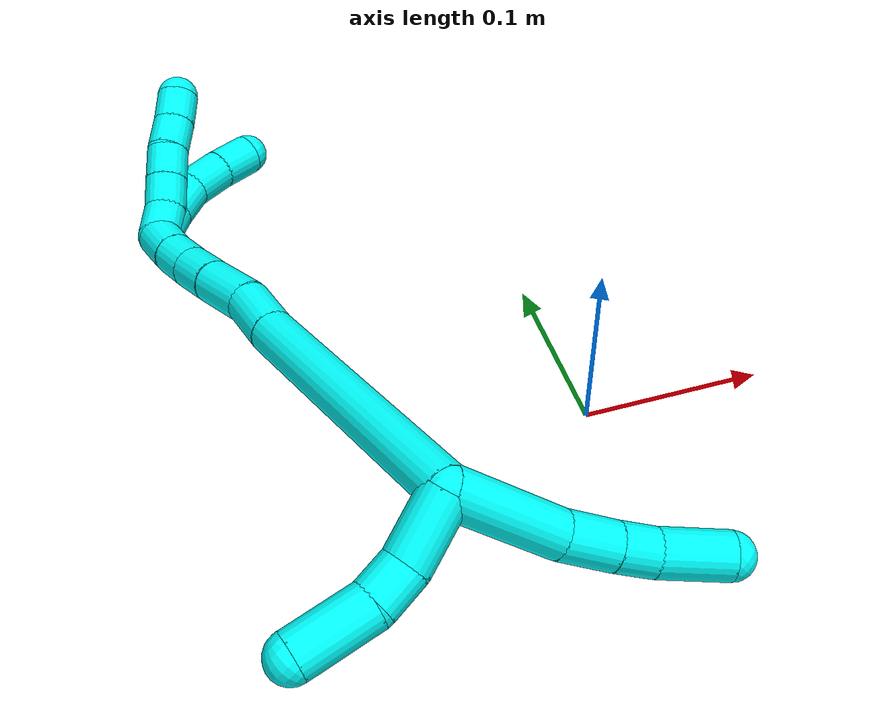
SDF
<sdf version="1.7">
 <world name="default">
  <model name="photoneo_s_sensor">
   <static>1</static>
   <pose>0 0 2 1.57079 1.57079 3.14159</pose>
   <link name="link">
    <inertial><mass>0.1</mass></inertial>
    <sensor name="sensor" type="depth">
     <update_rate>30</update_rate>
     <camera>
      <horizontal_fov>1.22</horizontal_fov>
      <image><width>1920</width><height>1200</height><format>B8G8R8</format></image>
      <clip><near>0.1</near><far>4</far></clip>
      <depth_camera><output>points</output></depth_camera>
     </camera>
     <plugin name="camera_plugin" filename="libgazebo_ros_depth_camera.so">
      <baseline>0.2</baseline>
      <alwaysOn>1</alwaysOn>
      <updateRate>0.0</updateRate>
      <cameraName>camera_ir</cameraName>
      <imageTopicName>/camera/color/image_raw</imageTopicName>
      <cameraInfoTopicName>/camera/color/camera_info</cameraInfoTopicName>
      <depthImageTopicName>/camera/depth/image_raw</depthImageTopicName>
      <depthImageCameraInfoTopicName>/camera/depth/camera_info</depthImageCameraInfoTopicName>
      <pointCloudTopicName>/camera/depth/points</pointCloudTopicName>
      <frameName>fr_optical</frameName>
      <pointCloudCutoff>0.1</pointCloudCutoff>
      <pointCloudCutoffMax>2.0</pointCloudCutoffMax>
      <distortionK1>0</distortionK1>
      <distortionK2>0</distortionK2>
      <distortionK3>0</distortionK3>
      <distortionT1>0</distortionT1>
      <distortionT2>0</distortionT2>
      <CxPrime>0</CxPrime>
      <Cx>0</Cx>
      <Cy>0</Cy>
      <focalLength>0</focalLength>
      <hackBaseline>0</hackBaseline>
     </plugin>
    </sensor>
   </link>
  </model>
  <model name="bin">
   <static>1</static>
   <link name="bottom">
    <collision name="collision-bottom">
     <pose>0 0 -0.01 0 -0 0</pose>
     <geometry><box><size>0.8 0.6 0.02</size></box></geometry>
     <surface>
      <friction><ode><mu>100</mu><mu2>100</mu2></ode></friction>
      <contact><collide_bitmask>65535</collide_bitmask></contact>
     </surface>
    </collision>
   </link>
   <link name="west_wall">
    <collision name="collision-west_wall">
     <pose>-0.41 0 0.1 0 -0 0</pose>
     <geometry><box><size>0.02 0.6 0.2</size></box></geometry>
     <surface>
      <friction><ode><mu>100</mu><mu2>100</mu2></ode></friction>
      <contact><collide_bitmask>65535</collide_bitmask></contact>
     </surface>
    </collision>
   </link>
   <link name="east_wall">
    <collision name="collision-east_wall">
     <pose>0.41 0 0.1 0 -0 0</pose>
     <geometry><box><size>0.02 0.6 0.2</size></box></geometry>
     <surface>
      <friction><ode><mu>100</mu><mu2>100</mu2></ode></friction>
      <contact><collide_bitmask>65535</collide_bitmask></contact>
     </surface>
    </collision>
   </link>
   <link name="south_wall">
    <collision name="collision-south_wall">
     <pose>0 -0.31 0.1 0 -0 0</pose>
     <geometry><box><size>0.8 0.02 0.2</size></box></geometry>
     <surface>
      <friction><ode><mu>100</mu><mu2>100</mu2></ode></friction>
      <contact><collide_bitmask>65535</collide_bitmask></contact>
     </surface>
    </collision>
   </link>
   <link name="north_wall">
    <collision name="collision-north_wall">
     <pose>0 0.31 0.1 0 -0 0</pose>
     <geometry><box><size>0.8 0.02 0.2</size></box></geometry>
     <surface>
      <friction><ode><mu>100</mu><mu2>100</mu2></ode></friction>
      <contact><collide_bitmask>65535</collide_bitmask></contact>
     </surface>
    </collision>
   </link>
  </model>
  <model name="3">
   <static>0</static>
   <link name="3">
    <collision name="collision-cylinder-e_1_2_8">
     <pose>0.011926 0.00792 -0.028072 -2.86661 0.388137 -1.91478</pose>
     <geometry><cylinder><radius>0.0125</radius><length>0.063023</length></cylinder></geometry>
     <surface>
      <friction><ode><mu>1.16</mu><mu2>1.16</mu2><slip1>0</slip1><slip2>0</slip2></ode></friction>
      <contact><ode><kp>1e+06</kp><kd>1</kd><max_vel>0</max_vel><min_depth>0.001</min_depth></ode></contact>
     </surface>
    </collision>
    <visual name="visual-cylinder-e_1_2_8">
     <pose>0.011926 0.00792 -0.028072 -2.86661 0.388137 -1.91478</pose>
     <geometry><cylinder><radius>0.0125</radius><length>0.063023</length></cylinder></geometry>
     <material><ambient>0.003922 1 0.996078 1</ambient></material>
    </visual>
    <collision name="collision-cylinder-e_2_8_9">
     <pose>0.031077 0.016885 -0.0684 -3.05653 0.531033 -2.83111</pose>
     <geometry><cylinder><radius>0.0125</radius><length>0.028533</length></cylinder></geometry>
     <surface>
      <friction><ode><mu>1.16</mu><mu2>1.16</mu2><slip1>0</slip1><slip2>0</slip2></ode></friction>
      <contact><ode><kp>1e+06</kp><kd>1</kd><max_vel>0</max_vel><min_depth>0.001</min_depth></ode></contact>
     </surface>
    </collision>
    <visual name="visual-cylinder-e_2_8_9">
     <pose>0.031077 0.016885 -0.0684 -3.05653 0.531033 -2.83111</pose>
     <geometry><cylinder><radius>0.0125</radius><length>0.028533</length></cylinder></geometry>
     <material><ambient>0.003922 1 0.996078 1</ambient></material>
    </visual>
    <collision name="collision-cylinder-e_3_9_10">
     <pose>0.043987 0.01862 -0.08929 -3.06184 0.580967 -2.87624</pose>
     <geometry><cylinder><radius>0.0125</radius><length>0.020718</length></cylinder></geometry>
     <surface>
      <friction><ode><mu>1.16</mu><mu2>1.16</mu2><slip1>0</slip1><slip2>0</slip2></ode></friction>
      <contact><ode><kp>1e+06</kp><kd>1</kd><max_vel>0</max_vel><min_depth>0.001</min_depth></ode></contact>
     </surface>
    </collision>
    <visual name="visual-cylinder-e_3_9_10">
     <pose>0.043987 0.01862 -0.08929 -3.06184 0.580967 -2.87624</pose>
     <geometry><cylinder><radius>0.0125</radius><length>0.020718</length></cylinder></geometry>
     <material><ambient>0.003922 1 0.996078 1</ambient></material>
    </visual>
    <collision name="collision-cylinder-e_4_10_6">
     <pose>0.061637 0.017701 -0.112415 3.03103 0.687106 2.83465</pose>
     <geometry><cylinder><radius>0.0125</radius><length>0.037726</length></cylinder></geometry>
     <surface>
      <friction><ode><mu>1.16</mu><mu2>1.16</mu2><slip1>0</slip1><slip2>0</slip2></ode></friction>
      <contact><ode><kp>1e+06</kp><kd>1</kd><max_vel>0</max_vel><min_depth>0.001</min_depth></ode></contact>
     </surface>
    </collision>
    <visual name="visual-cylinder-e_4_10_6">
     <pose>0.061637 0.017701 -0.112415 3.03103 0.687106 2.83465</pose>
     <geometry><cylinder><radius>0.0125</radius><length>0.037726</length></cylinder></geometry>
     <material><ambient>0.003922 1 0.996078 1</ambient></material>
    </visual>
    <collision name="collision-cylinder-e_1_2_11">
     <pose>-0.017845 0.002899 -0.00473 -2.59181 -1.2694 2.41002</pose>
     <geometry><cylinder><radius>0.0125</radius><length>0.037374</length></cylinder></geometry>
     <surface>
      <friction><ode><mu>1.16</mu><mu2>1.16</mu2><slip1>0</slip1><slip2>0</slip2></ode></friction>
      <contact><ode><kp>1e+06</kp><kd>1</kd><max_vel>0</max_vel><min_depth>0.001</min_depth></ode></contact>
     </surface>
    </collision>
    <visual name="visual-cylinder-e_1_2_11">
     <pose>-0.017845 0.002899 -0.00473 -2.59181 -1.2694 2.41002</pose>
     <geometry><cylinder><radius>0.0125</radius><length>0.037374</length></cylinder></geometry>
     <material><ambient>0.003922 1 0.996078 1</ambient></material>
    </visual>
    <collision name="collision-cylinder-e_2_11_12">
     <pose>-0.046685 0.005136 -0.009289 1.31771 -1.50873 -1.25808</pose>
     <geometry><cylinder><radius>0.0125</radius><length>0.022033</length></cylinder></geometry>
     <surface>
      <friction><ode><mu>1.16</mu><mu2>1.16</mu2><slip1>0</slip1><slip2>0</slip2></ode></friction>
      <contact><ode><kp>1e+06</kp><kd>1</kd><max_vel>0</max_vel><min_depth>0.001</min_depth></ode></contact>
     </surface>
    </collision>
    <visual name="visual-cylinder-e_2_11_12">
     <pose>-0.046685 0.005136 -0.009289 1.31771 -1.50873 -1.25808</pose>
     <geometry><cylinder><radius>0.0125</radius><length>0.022033</length></cylinder></geometry>
     <material><ambient>0.003922 1 0.996078 1</ambient></material>
    </visual>
    <collision name="collision-cylinder-e_3_12_5">
     <pose>-0.077157 0.004464 -0.00341 0.001716 -1.28574 -0.001286</pose>
     <geometry><cylinder><radius>0.0125</radius><length>0.040593</length></cylinder></geometry>
     <surface>
      <friction><ode><mu>1.16</mu><mu2>1.16</mu2><slip1>0</slip1><slip2>0</slip2></ode></friction>
      <contact><ode><kp>1e+06</kp><kd>1</kd><max_vel>0</max_vel><min_depth>0.001</min_depth></ode></contact>
     </surface>
    </collision>
    <visual name="visual-cylinder-e_3_12_5">
     <pose>-0.077157 0.004464 -0.00341 0.001716 -1.28574 -0.001286</pose>
     <geometry><cylinder><radius>0.0125</radius><length>0.040593</length></cylinder></geometry>
     <material><ambient>0.003922 1 0.996078 1</ambient></material>
    </visual>
    <collision name="collision-cylinder-e_1_2_13">
     <pose>0.00993 0.062145 0.051132 -0.882319 0.122763 -0.058025</pose>
     <geometry><cylinder><radius>0.0125</radius><length>0.162175</length></cylinder></geometry>
     <surface>
      <friction><ode><mu>1.16</mu><mu2>1.16</mu2><slip1>0</slip1><slip2>0</slip2></ode></friction>
      <contact><ode><kp>1e+06</kp><kd>1</kd><max_vel>0</max_vel><min_depth>0.001</min_depth></ode></contact>
     </surface>
    </collision>
    <visual name="visual-cylinder-e_1_2_13">
     <pose>0.00993 0.062145 0.051132 -0.882319 0.122763 -0.058025</pose>
     <geometry><cylinder><radius>0.0125</radius><length>0.162175</length></cylinder></geometry>
     <material><ambient>0.003922 1 0.996078 1</ambient></material>
    </visual>
    <collision name="collision-cylinder-e_2_13_14">
     <pose>0.023476 0.136497 0.112557 -0.870236 0.222755 -0.10388</pose>
     <geometry><cylinder><radius>0.0125</radius><length>0.032741</length></cylinder></geometry>
     <surface>
      <friction><ode><mu>1.16</mu><mu2>1.16</mu2><slip1>0</slip1><slip2>0</slip2></ode></friction>
      <contact><ode><kp>1e+06</kp><kd>1</kd><max_vel>0</max_vel><min_depth>0.001</min_depth></ode></contact>
     </surface>
    </collision>
    <visual name="visual-cylinder-e_2_13_14">
     <pose>0.023476 0.136497 0.112557 -0.870236 0.222755 -0.10388</pose>
     <geometry><cylinder><radius>0.0125</radius><length>0.032741</length></cylinder></geometry>
     <material><ambient>0.003922 1 0.996078 1</ambient></material>
    </visual>
    <collision name="collision-cylinder-e_3_14_15">
     <pose>0.026928 0.161661 0.13425 -0.849236 -0.00952 0.004304</pose>
     <geometry><cylinder><radius>0.0125</radius><length>0.034522</length></cylinder></geometry>
     <surface>
      <friction><ode><mu>1.16</mu><mu2>1.16</mu2><slip1>0</slip1><slip2>0</slip2></ode></friction>
      <contact><ode><kp>1e+06</kp><kd>1</kd><max_vel>0</max_vel><min_depth>0.001</min_depth></ode></contact>
     </surface>
    </collision>
    <visual name="visual-cylinder-e_3_14_15">
     <pose>0.026928 0.161661 0.13425 -0.849236 -0.00952 0.004304</pose>
     <geometry><cylinder><radius>0.0125</radius><length>0.034522</length></cylinder></geometry>
     <material><ambient>0.003922 1 0.996078 1</ambient></material>
    </visual>
    <collision name="collision-cylinder-e_4_15_16">
     <pose>0.02719 0.184463 0.153382 -0.905059 0.034101 -0.01658</pose>
     <geometry><cylinder><radius>0.0125</radius><length>0.025047</length></cylinder></geometry>
     <surface>
      <friction><ode><mu>1.16</mu><mu2>1.16</mu2><slip1>0</slip1><slip2>0</slip2></ode></friction>
      <contact><ode><kp>1e+06</kp><kd>1</kd><max_vel>0</max_vel><min_depth>0.001</min_depth></ode></contact>
     </surface>
    </collision>
    <visual name="visual-cylinder-e_4_15_16">
     <pose>0.02719 0.184463 0.153382 -0.905059 0.034101 -0.01658</pose>
     <geometry><cylinder><radius>0.0125</radius><length>0.025047</length></cylinder></geometry>
     <material><ambient>0.003922 1 0.996078 1</ambient></material>
    </visual>
    <collision name="collision-cylinder-e_5_16_17">
     <pose>0.028308 0.202496 0.168317 -0.849323 0.063269 -0.028616</pose>
     <geometry><cylinder><radius>0.0125</radius><length>0.021857</length></cylinder></geometry>
     <surface>
      <friction><ode><mu>1.16</mu><mu2>1.16</mu2><slip1>0</slip1><slip2>0</slip2></ode></friction>
      <contact><ode><kp>1e+06</kp><kd>1</kd><max_vel>0</max_vel><min_depth>0.001</min_depth></ode></contact>
     </surface>
    </collision>
    <visual name="visual-cylinder-e_5_16_17">
     <pose>0.028308 0.202496 0.168317 -0.849323 0.063269 -0.028616</pose>
     <geometry><cylinder><radius>0.0125</radius><length>0.021857</length></cylinder></geometry>
     <material><ambient>0.003922 1 0.996078 1</ambient></material>
    </visual>
    <collision name="collision-cylinder-e_6_17_1">
     <pose>0.031056 0.219451 0.183192 -0.85188 0.174706 -0.079427</pose>
     <geometry><cylinder><radius>0.0125</radius><length>0.023658</length></cylinder></geometry>
     <surface>
      <friction><ode><mu>1.16</mu><mu2>1.16</mu2><slip1>0</slip1><slip2>0</slip2></ode></friction>
      <contact><ode><kp>1e+06</kp><kd>1</kd><max_vel>0</max_vel><min_depth>0.001</min_depth></ode></contact>
     </surface>
    </collision>
    <visual name="visual-cylinder-e_6_17_1">
     <pose>0.031056 0.219451 0.183192 -0.85188 0.174706 -0.079427</pose>
     <geometry><cylinder><radius>0.0125</radius><length>0.023658</length></cylinder></geometry>
     <material><ambient>0.003922 1 0.996078 1</ambient></material>
    </visual>
    <collision name="collision-cylinder-e_1_1_18">
     <pose>0.040995 0.231933 0.195767 -0.648466 0.908154 -0.325194</pose>
     <geometry><cylinder><radius>0.0125</radius><length>0.02</length></cylinder></geometry>
     <surface>
      <friction><ode><mu>1.16</mu><mu2>1.16</mu2><slip1>0</slip1><slip2>0</slip2></ode></friction>
      <contact><ode><kp>1e+06</kp><kd>1</kd><max_vel>0</max_vel><min_depth>0.001</min_depth></ode></contact>
     </surface>
    </collision>
    <visual name="visual-cylinder-e_1_1_18">
     <pose>0.040995 0.231933 0.195767 -0.648466 0.908154 -0.325194</pose>
     <geometry><cylinder><radius>0.0125</radius><length>0.02</length></cylinder></geometry>
     <material><ambient>0.003922 1 0.996078 1</ambient></material>
    </visual>
    <collision name="collision-cylinder-e_2_18_19">
     <pose>0.056225 0.237543 0.207185 -0.283066 0.825104 -0.124562</pose>
     <geometry><cylinder><radius>0.0125</radius><length>0.02</length></cylinder></geometry>
     <surface>
      <friction><ode><mu>1.16</mu><mu2>1.16</mu2><slip1>0</slip1><slip2>0</slip2></ode></friction>
      <contact><ode><kp>1e+06</kp><kd>1</kd><max_vel>0</max_vel><min_depth>0.001</min_depth></ode></contact>
     </surface>
    </collision>
    <visual name="visual-cylinder-e_2_18_19">
     <pose>0.056225 0.237543 0.207185 -0.283066 0.825104 -0.124562</pose>
     <geometry><cylinder><radius>0.0125</radius><length>0.02</length></cylinder></geometry>
     <material><ambient>0.003922 1 0.996078 1</ambient></material>
    </visual>
    <collision name="collision-cylinder-e_3_19_20">
     <pose>0.070994 0.241411 0.220104 -0.298767 0.836411 -0.133576</pose>
     <geometry><cylinder><radius>0.0125</radius><length>0.02</length></cylinder></geometry>
     <surface>
      <friction><ode><mu>1.16</mu><mu2>1.16</mu2><slip1>0</slip1><slip2>0</slip2></ode></friction>
      <contact><ode><kp>1e+06</kp><kd>1</kd><max_vel>0</max_vel><min_depth>0.001</min_depth></ode></contact>
     </surface>
    </collision>
    <visual name="visual-cylinder-e_3_19_20">
     <pose>0.070994 0.241411 0.220104 -0.298767 0.836411 -0.133576</pose>
     <geometry><cylinder><radius>0.0125</radius><length>0.02</length></cylinder></geometry>
     <material><ambient>0.003922 1 0.996078 1</ambient></material>
    </visual>
    <collision name="collision-cylinder-e_4_20_21">
     <pose>0.086548 0.246153 0.231629 -0.495822 0.949505 -0.258731</pose>
     <geometry><cylinder><radius>0.0125</radius><length>0.02</length></cylinder></geometry>
     <surface>
      <friction><ode><mu>1.16</mu><mu2>1.16</mu2><slip1>0</slip1><slip2>0</slip2></ode></friction>
      <contact><ode><kp>1e+06</kp><kd>1</kd><max_vel>0</max_vel><min_depth>0.001</min_depth></ode></contact>
     </surface>
    </collision>
    <visual name="visual-cylinder-e_4_20_21">
     <pose>0.086548 0.246153 0.231629 -0.495822 0.949505 -0.258731</pose>
     <geometry><cylinder><radius>0.0125</radius><length>0.02</length></cylinder></geometry>
     <material><ambient>0.003922 1 0.996078 1</ambient></material>
    </visual>
    <collision name="collision-cylinder-e_5_21_4">
     <pose>0.102557 0.251225 0.242461 -0.38315 0.907192 -0.188544</pose>
     <geometry><cylinder><radius>0.0125</radius><length>0.02</length></cylinder></geometry>
     <surface>
      <friction><ode><mu>1.16</mu><mu2>1.16</mu2><slip1>0</slip1><slip2>0</slip2></ode></friction>
      <contact><ode><kp>1e+06</kp><kd>1</kd><max_vel>0</max_vel><min_depth>0.001</min_depth></ode></contact>
     </surface>
    </collision>
    <visual name="visual-cylinder-e_5_21_4">
     <pose>0.102557 0.251225 0.242461 -0.38315 0.907192 -0.188544</pose>
     <geometry><cylinder><radius>0.0125</radius><length>0.02</length></cylinder></geometry>
     <material><ambient>0.003922 1 0.996078 1</ambient></material>
    </visual>
    <collision name="collision-cylinder-e_1_1_22">
     <pose>0.042149 0.23581 0.194081 -1.16999 0.831163 -0.568713</pose>
     <geometry><cylinder><radius>0.0125</radius><length>0.024469</length></cylinder></geometry>
     <surface>
      <friction><ode><mu>1.16</mu><mu2>1.16</mu2><slip1>0</slip1><slip2>0</slip2></ode></friction>
      <contact><ode><kp>1e+06</kp><kd>1</kd><max_vel>0</max_vel><min_depth>0.001</min_depth></ode></contact>
     </surface>
    </collision>
    <visual name="visual-cylinder-e_1_1_22">
     <pose>0.042149 0.23581 0.194081 -1.16999 0.831163 -0.568713</pose>
     <geometry><cylinder><radius>0.0125</radius><length>0.024469</length></cylinder></geometry>
     <material><ambient>0.003922 1 0.996078 1</ambient></material>
    </visual>
    <collision name="collision-cylinder-e_2_22_23">
     <pose>0.062305 0.249761 0.199582 -1.226 1.02474 -0.753481</pose>
     <geometry><cylinder><radius>0.0125</radius><length>0.026019</length></cylinder></geometry>
     <surface>
      <friction><ode><mu>1.16</mu><mu2>1.16</mu2><slip1>0</slip1><slip2>0</slip2></ode></friction>
      <contact><ode><kp>1e+06</kp><kd>1</kd><max_vel>0</max_vel><min_depth>0.001</min_depth></ode></contact>
     </surface>
    </collision>
    <visual name="visual-cylinder-e_2_22_23">
     <pose>0.062305 0.249761 0.199582 -1.226 1.02474 -0.753481</pose>
     <geometry><cylinder><radius>0.0125</radius><length>0.026019</length></cylinder></geometry>
     <material><ambient>0.003922 1 0.996078 1</ambient></material>
    </visual>
    <collision name="collision-cylinder-e_3_23_24">
     <pose>0.085409 0.260521 0.200441 -1.88377 1.2025 -1.51212</pose>
     <geometry><cylinder><radius>0.0125</radius><length>0.025697</length></cylinder></geometry>
     <surface>
      <friction><ode><mu>1.16</mu><mu2>1.16</mu2><slip1>0</slip1><slip2>0</slip2></ode></friction>
      <contact><ode><kp>1e+06</kp><kd>1</kd><max_vel>0</max_vel><min_depth>0.001</min_depth></ode></contact>
     </surface>
    </collision>
    <visual name="visual-cylinder-e_3_23_24">
     <pose>0.085409 0.260521 0.200441 -1.88377 1.2025 -1.51212</pose>
     <geometry><cylinder><radius>0.0125</radius><length>0.025697</length></cylinder></geometry>
     <material><ambient>0.003922 1 0.996078 1</ambient></material>
    </visual>
    <collision name="collision-cylinder-e_4_24_3">
     <pose>0.108534 0.268393 0.196634 -2.17248 1.20933 -1.83956</pose>
     <geometry><cylinder><radius>0.0125</radius><length>0.023815</length></cylinder></geometry>
     <surface>
      <friction><ode><mu>1.16</mu><mu2>1.16</mu2><slip1>0</slip1><slip2>0</slip2></ode></friction>
      <contact><ode><kp>1e+06</kp><kd>1</kd><max_vel>0</max_vel><min_depth>0.001</min_depth></ode></contact>
     </surface>
    </collision>
    <visual name="visual-cylinder-e_4_24_3">
     <pose>0.108534 0.268393 0.196634 -2.17248 1.20933 -1.83956</pose>
     <geometry><cylinder><radius>0.0125</radius><length>0.023815</length></cylinder></geometry>
     <material><ambient>0.003922 1 0.996078 1</ambient></material>
    </visual>
    <collision name="collision-sphere-3">
     <pose>0.119672 0.271865 0.19425 0 -0 0</pose>
     <geometry><sphere><radius>0.0125</radius></sphere></geometry>
     <surface>
      <friction><ode><mu>1.16</mu><mu2>1.16</mu2><slip1>0</slip1><slip2>0</slip2></ode></friction>
      <contact><ode><kp>1e+06</kp><kd>1</kd><max_vel>0</max_vel><min_depth>0.001</min_depth></ode></contact>
     </surface>
    </collision>
    <visual name="visual-sphere-3">
     <pose>0.119672 0.271865 0.19425 0 -0 0</pose>
     <geometry><sphere><radius>0.0125</radius></sphere></geometry>
     <material><ambient>0.003922 1 0.996078 1</ambient></material>
    </visual>
    <collision name="collision-sphere-24">
     <pose>0.097396 0.264922 0.199017 0 -0 0</pose>
     <geometry><sphere><radius>0.0125</radius></sphere></geometry>
     <surface>
      <friction><ode><mu>1.16</mu><mu2>1.16</mu2><slip1>0</slip1><slip2>0</slip2></ode></friction>
      <contact><ode><kp>1e+06</kp><kd>1</kd><max_vel>0</max_vel><min_depth>0.001</min_depth></ode></contact>
     </surface>
    </collision>
    <visual name="visual-sphere-24">
     <pose>0.097396 0.264922 0.199017 0 -0 0</pose>
     <geometry><sphere><radius>0.0125</radius></sphere></geometry>
     <material><ambient>0.003922 1 0.996078 1</ambient></material>
    </visual>
    <collision name="collision-sphere-23">
     <pose>0.073422 0.256119 0.201866 0 -0 0</pose>
     <geometry><sphere><radius>0.0125</radius></sphere></geometry>
     <surface>
      <friction><ode><mu>1.16</mu><mu2>1.16</mu2><slip1>0</slip1><slip2>0</slip2></ode></friction>
      <contact><ode><kp>1e+06</kp><kd>1</kd><max_vel>0</max_vel><min_depth>0.001</min_depth></ode></contact>
     </surface>
    </collision>
    <visual name="visual-sphere-23">
     <pose>0.073422 0.256119 0.201866 0 -0 0</pose>
     <geometry><sphere><radius>0.0125</radius></sphere></geometry>
     <material><ambient>0.003922 1 0.996078 1</ambient></material>
    </visual>
    <collision name="collision-sphere-22">
     <pose>0.051187 0.243403 0.197298 0 -0 0</pose>
     <geometry><sphere><radius>0.0125</radius></sphere></geometry>
     <surface>
      <friction><ode><mu>1.16</mu><mu2>1.16</mu2><slip1>0</slip1><slip2>0</slip2></ode></friction>
      <contact><ode><kp>1e+06</kp><kd>1</kd><max_vel>0</max_vel><min_depth>0.001</min_depth></ode></contact>
     </surface>
    </collision>
    <visual name="visual-sphere-22">
     <pose>0.051187 0.243403 0.197298 0 -0 0</pose>
     <geometry><sphere><radius>0.0125</radius></sphere></geometry>
     <material><ambient>0.003922 1 0.996078 1</ambient></material>
    </visual>
    <collision name="collision-sphere-4">
     <pose>0.110434 0.253527 0.248174 0 -0 0</pose>
     <geometry><sphere><radius>0.0125</radius></sphere></geometry>
     <surface>
      <friction><ode><mu>1.16</mu><mu2>1.16</mu2><slip1>0</slip1><slip2>0</slip2></ode></friction>
      <contact><ode><kp>1e+06</kp><kd>1</kd><max_vel>0</max_vel><min_depth>0.001</min_depth></ode></contact>
     </surface>
    </collision>
    <visual name="visual-sphere-4">
     <pose>0.110434 0.253527 0.248174 0 -0 0</pose>
     <geometry><sphere><radius>0.0125</radius></sphere></geometry>
     <material><ambient>0.003922 1 0.996078 1</ambient></material>
    </visual>
    <collision name="collision-sphere-21">
     <pose>0.094679 0.248922 0.236748 0 -0 0</pose>
     <geometry><sphere><radius>0.0125</radius></sphere></geometry>
     <surface>
      <friction><ode><mu>1.16</mu><mu2>1.16</mu2><slip1>0</slip1><slip2>0</slip2></ode></friction>
      <contact><ode><kp>1e+06</kp><kd>1</kd><max_vel>0</max_vel><min_depth>0.001</min_depth></ode></contact>
     </surface>
    </collision>
    <visual name="visual-sphere-21">
     <pose>0.094679 0.248922 0.236748 0 -0 0</pose>
     <geometry><sphere><radius>0.0125</radius></sphere></geometry>
     <material><ambient>0.003922 1 0.996078 1</ambient></material>
    </visual>
    <collision name="collision-sphere-20">
     <pose>0.078416 0.243383 0.226509 0 -0 0</pose>
     <geometry><sphere><radius>0.0125</radius></sphere></geometry>
     <surface>
      <friction><ode><mu>1.16</mu><mu2>1.16</mu2><slip1>0</slip1><slip2>0</slip2></ode></friction>
      <contact><ode><kp>1e+06</kp><kd>1</kd><max_vel>0</max_vel><min_depth>0.001</min_depth></ode></contact>
     </surface>
    </collision>
    <visual name="visual-sphere-20">
     <pose>0.078416 0.243383 0.226509 0 -0 0</pose>
     <geometry><sphere><radius>0.0125</radius></sphere></geometry>
     <material><ambient>0.003922 1 0.996078 1</ambient></material>
    </visual>
    <collision name="collision-sphere-11">
     <pose>-0.03569 0.005797 -0.00946 0 -0 0</pose>
     <geometry><sphere><radius>0.0125</radius></sphere></geometry>
     <surface>
      <friction><ode><mu>1.16</mu><mu2>1.16</mu2><slip1>0</slip1><slip2>0</slip2></ode></friction>
      <contact><ode><kp>1e+06</kp><kd>1</kd><max_vel>0</max_vel><min_depth>0.001</min_depth></ode></contact>
     </surface>
    </collision>
    <visual name="visual-sphere-11">
     <pose>-0.03569 0.005797 -0.00946 0 -0 0</pose>
     <geometry><sphere><radius>0.0125</radius></sphere></geometry>
     <material><ambient>0.003922 1 0.996078 1</ambient></material>
    </visual>
    <collision name="collision-sphere-6">
     <pose>0.073602 0.016092 -0.126909 0 -0 0</pose>
     <geometry><sphere><radius>0.0125</radius></sphere></geometry>
     <surface>
      <friction><ode><mu>1.16</mu><mu2>1.16</mu2><slip1>0</slip1><slip2>0</slip2></ode></friction>
      <contact><ode><kp>1e+06</kp><kd>1</kd><max_vel>0</max_vel><min_depth>0.001</min_depth></ode></contact>
     </surface>
    </collision>
    <visual name="visual-sphere-6">
     <pose>0.073602 0.016092 -0.126909 0 -0 0</pose>
     <geometry><sphere><radius>0.0125</radius></sphere></geometry>
     <material><ambient>0.003922 1 0.996078 1</ambient></material>
    </visual>
    <collision name="collision-sphere-10">
     <pose>0.049673 0.01931 -0.097922 0 -0 0</pose>
     <geometry><sphere><radius>0.0125</radius></sphere></geometry>
     <surface>
      <friction><ode><mu>1.16</mu><mu2>1.16</mu2><slip1>0</slip1><slip2>0</slip2></ode></friction>
      <contact><ode><kp>1e+06</kp><kd>1</kd><max_vel>0</max_vel><min_depth>0.001</min_depth></ode></contact>
     </surface>
    </collision>
    <visual name="visual-sphere-10">
     <pose>0.049673 0.01931 -0.097922 0 -0 0</pose>
     <geometry><sphere><radius>0.0125</radius></sphere></geometry>
     <material><ambient>0.003922 1 0.996078 1</ambient></material>
    </visual>
    <collision name="collision-sphere-9">
     <pose>0.038302 0.01793 -0.080658 0 -0 0</pose>
     <geometry><sphere><radius>0.0125</radius></sphere></geometry>
     <surface>
      <friction><ode><mu>1.16</mu><mu2>1.16</mu2><slip1>0</slip1><slip2>0</slip2></ode></friction>
      <contact><ode><kp>1e+06</kp><kd>1</kd><max_vel>0</max_vel><min_depth>0.001</min_depth></ode></contact>
     </surface>
    </collision>
    <visual name="visual-sphere-9">
     <pose>0.038302 0.01793 -0.080658 0 -0 0</pose>
     <geometry><sphere><radius>0.0125</radius></sphere></geometry>
     <material><ambient>0.003922 1 0.996078 1</ambient></material>
    </visual>
    <collision name="collision-sphere-2">
     <geometry><sphere><radius>0.0125</radius></sphere></geometry>
     <surface>
      <friction><ode><mu>1.16</mu><mu2>1.16</mu2><slip1>0</slip1><slip2>0</slip2></ode></friction>
      <contact><ode><kp>1e+06</kp><kd>1</kd><max_vel>0</max_vel><min_depth>0.001</min_depth></ode></contact>
     </surface>
    </collision>
    <visual name="visual-sphere-2">
     <geometry><sphere><radius>0.0125</radius></sphere></geometry>
     <material><ambient>0.003922 1 0.996078 1</ambient></material>
    </visual>
    <collision name="collision-sphere-19">
     <pose>0.063571 0.239438 0.2137 0 -0 0</pose>
     <geometry><sphere><radius>0.0125</radius></sphere></geometry>
     <surface>
      <friction><ode><mu>1.16</mu><mu2>1.16</mu2><slip1>0</slip1><slip2>0</slip2></ode></friction>
      <contact><ode><kp>1e+06</kp><kd>1</kd><max_vel>0</max_vel><min_depth>0.001</min_depth></ode></contact>
     </surface>
    </collision>
    <visual name="visual-sphere-19">
     <pose>0.063571 0.239438 0.2137 0 -0 0</pose>
     <geometry><sphere><radius>0.0125</radius></sphere></geometry>
     <material><ambient>0.003922 1 0.996078 1</ambient></material>
    </visual>
    <collision name="collision-sphere-8">
     <pose>0.023852 0.01584 -0.056143 0 -0 0</pose>
     <geometry><sphere><radius>0.0125</radius></sphere></geometry>
     <surface>
      <friction><ode><mu>1.16</mu><mu2>1.16</mu2><slip1>0</slip1><slip2>0</slip2></ode></friction>
      <contact><ode><kp>1e+06</kp><kd>1</kd><max_vel>0</max_vel><min_depth>0.001</min_depth></ode></contact>
     </surface>
    </collision>
    <visual name="visual-sphere-8">
     <pose>0.023852 0.01584 -0.056143 0 -0 0</pose>
     <geometry><sphere><radius>0.0125</radius></sphere></geometry>
     <material><ambient>0.003922 1 0.996078 1</ambient></material>
    </visual>
    <collision name="collision-sphere-12">
     <pose>-0.05768 0.004474 -0.009118 0 -0 0</pose>
     <geometry><sphere><radius>0.0125</radius></sphere></geometry>
     <surface>
      <friction><ode><mu>1.16</mu><mu2>1.16</mu2><slip1>0</slip1><slip2>0</slip2></ode></friction>
      <contact><ode><kp>1e+06</kp><kd>1</kd><max_vel>0</max_vel><min_depth>0.001</min_depth></ode></contact>
     </surface>
    </collision>
    <visual name="visual-sphere-12">
     <pose>-0.05768 0.004474 -0.009118 0 -0 0</pose>
     <geometry><sphere><radius>0.0125</radius></sphere></geometry>
     <material><ambient>0.003922 1 0.996078 1</ambient></material>
    </visual>
    <collision name="collision-sphere-5">
     <pose>-0.096635 0.004454 0.002297 0 -0 0</pose>
     <geometry><sphere><radius>0.0125</radius></sphere></geometry>
     <surface>
      <friction><ode><mu>1.16</mu><mu2>1.16</mu2><slip1>0</slip1><slip2>0</slip2></ode></friction>
      <contact><ode><kp>1e+06</kp><kd>1</kd><max_vel>0</max_vel><min_depth>0.001</min_depth></ode></contact>
     </surface>
    </collision>
    <visual name="visual-sphere-5">
     <pose>-0.096635 0.004454 0.002297 0 -0 0</pose>
     <geometry><sphere><radius>0.0125</radius></sphere></geometry>
     <material><ambient>0.003922 1 0.996078 1</ambient></material>
    </visual>
    <collision name="collision-sphere-13">
     <pose>0.019859 0.124291 0.102264 0 -0 0</pose>
     <geometry><sphere><radius>0.0125</radius></sphere></geometry>
     <surface>
      <friction><ode><mu>1.16</mu><mu2>1.16</mu2><slip1>0</slip1><slip2>0</slip2></ode></friction>
      <contact><ode><kp>1e+06</kp><kd>1</kd><max_vel>0</max_vel><min_depth>0.001</min_depth></ode></contact>
     </surface>
    </collision>
    <visual name="visual-sphere-13">
     <pose>0.019859 0.124291 0.102264 0 -0 0</pose>
     <geometry><sphere><radius>0.0125</radius></sphere></geometry>
     <material><ambient>0.003922 1 0.996078 1</ambient></material>
    </visual>
    <collision name="collision-sphere-14">
     <pose>0.027092 0.148703 0.122849 0 -0 0</pose>
     <geometry><sphere><radius>0.0125</radius></sphere></geometry>
     <surface>
      <friction><ode><mu>1.16</mu><mu2>1.16</mu2><slip1>0</slip1><slip2>0</slip2></ode></friction>
      <contact><ode><kp>1e+06</kp><kd>1</kd><max_vel>0</max_vel><min_depth>0.001</min_depth></ode></contact>
     </surface>
    </collision>
    <visual name="visual-sphere-14">
     <pose>0.027092 0.148703 0.122849 0 -0 0</pose>
     <geometry><sphere><radius>0.0125</radius></sphere></geometry>
     <material><ambient>0.003922 1 0.996078 1</ambient></material>
    </visual>
    <collision name="collision-sphere-15">
     <pose>0.026764 0.17462 0.145652 0 -0 0</pose>
     <geometry><sphere><radius>0.0125</radius></sphere></geometry>
     <surface>
      <friction><ode><mu>1.16</mu><mu2>1.16</mu2><slip1>0</slip1><slip2>0</slip2></ode></friction>
      <contact><ode><kp>1e+06</kp><kd>1</kd><max_vel>0</max_vel><min_depth>0.001</min_depth></ode></contact>
     </surface>
    </collision>
    <visual name="visual-sphere-15">
     <pose>0.026764 0.17462 0.145652 0 -0 0</pose>
     <geometry><sphere><radius>0.0125</radius></sphere></geometry>
     <material><ambient>0.003922 1 0.996078 1</ambient></material>
    </visual>
    <collision name="collision-sphere-16">
     <pose>0.027617 0.194307 0.161113 0 -0 0</pose>
     <geometry><sphere><radius>0.0125</radius></sphere></geometry>
     <surface>
      <friction><ode><mu>1.16</mu><mu2>1.16</mu2><slip1>0</slip1><slip2>0</slip2></ode></friction>
      <contact><ode><kp>1e+06</kp><kd>1</kd><max_vel>0</max_vel><min_depth>0.001</min_depth></ode></contact>
     </surface>
    </collision>
    <visual name="visual-sphere-16">
     <pose>0.027617 0.194307 0.161113 0 -0 0</pose>
     <geometry><sphere><radius>0.0125</radius></sphere></geometry>
     <material><ambient>0.003922 1 0.996078 1</ambient></material>
    </visual>
    <collision name="collision-sphere-17">
     <pose>0.028999 0.210685 0.17552 0 -0 0</pose>
     <geometry><sphere><radius>0.0125</radius></sphere></geometry>
     <surface>
      <friction><ode><mu>1.16</mu><mu2>1.16</mu2><slip1>0</slip1><slip2>0</slip2></ode></friction>
      <contact><ode><kp>1e+06</kp><kd>1</kd><max_vel>0</max_vel><min_depth>0.001</min_depth></ode></contact>
     </surface>
    </collision>
    <visual name="visual-sphere-17">
     <pose>0.028999 0.210685 0.17552 0 -0 0</pose>
     <geometry><sphere><radius>0.0125</radius></sphere></geometry>
     <material><ambient>0.003922 1 0.996078 1</ambient></material>
    </visual>
    <collision name="collision-sphere-1">
     <pose>0.033112 0.228217 0.190864 0 -0 0</pose>
     <geometry><sphere><radius>0.0125</radius></sphere></geometry>
     <surface>
      <friction><ode><mu>1.16</mu><mu2>1.16</mu2><slip1>0</slip1><slip2>0</slip2></ode></friction>
      <contact><ode><kp>1e+06</kp><kd>1</kd><max_vel>0</max_vel><min_depth>0.001</min_depth></ode></contact>
     </surface>
    </collision>
    <visual name="visual-sphere-1">
     <pose>0.033112 0.228217 0.190864 0 -0 0</pose>
     <geometry><sphere><radius>0.0125</radius></sphere></geometry>
     <material><ambient>0.003922 1 0.996078 1</ambient></material>
    </visual>
    <collision name="collision-sphere-18">
     <pose>0.048879 0.235648 0.20067 0 -0 0</pose>
     <geometry><sphere><radius>0.0125</radius></sphere></geometry>
     <surface>
      <friction><ode><mu>1.16</mu><mu2>1.16</mu2><slip1>0</slip1><slip2>0</slip2></ode></friction>
      <contact><ode><kp>1e+06</kp><kd>1</kd><max_vel>0</max_vel><min_depth>0.001</min_depth></ode></contact>
     </surface>
    </collision>
    <visual name="visual-sphere-18">
     <pose>0.048879 0.235648 0.20067 0 -0 0</pose>
     <geometry><sphere><radius>0.0125</radius></sphere></geometry>
     <material><ambient>0.003922 1 0.996078 1</ambient></material>
    </visual>
    <inertial>
     <pose>0.026625 0.115098 0.079805 0 -0 0</pose>
     <mass>0.75</mass>
     <inertia>
      <ixx>0.000334</ixx>
      <ixy>0</ixy>
      <ixz>0</ixz>
      <iyy>0.00027</iyy>
      <iyz>0</iyz>
      <izz>-0.000351</izz>
     </inertia>
    </inertial>
   </link>
   <pose>-0.104701 -0.081342 0.074338 -0.942412 -0.324935 0.510201</pose>
  </model>
 </world>
</sdf>
